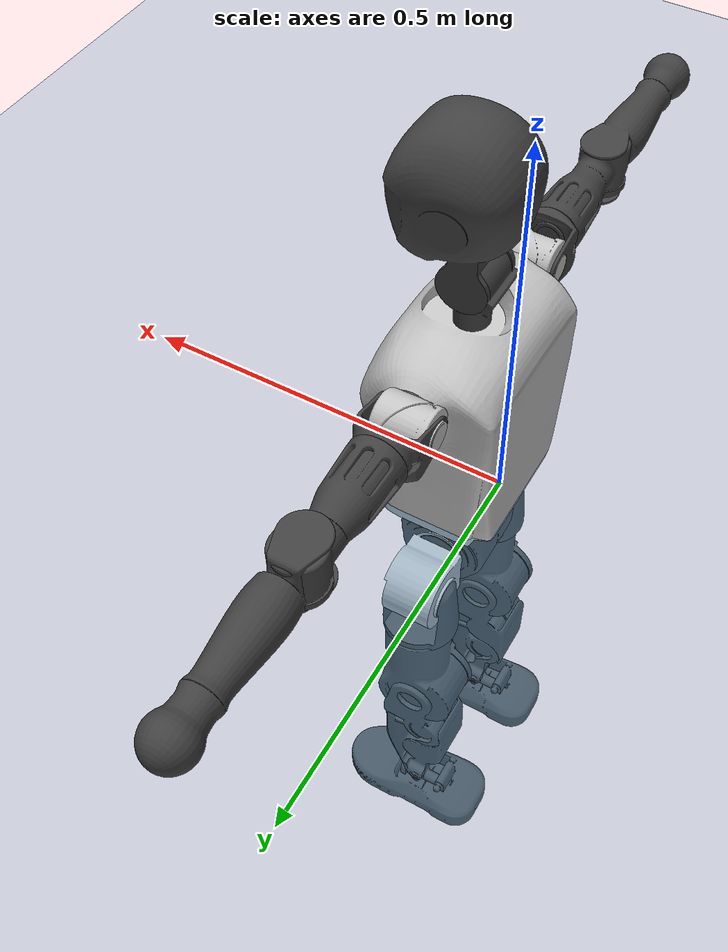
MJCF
<mujoco model="T1">
  <compiler angle="radian" assetdir="assets" balanceinertia="true" inertiafromgeom="false"/>

  <option timestep="0.005" density="1.2" viscosity="2e-05"/>

  <size nkey="1"/>

  <visual>
    <quality shadowsize="8192"/>
    <map shadowclip="0.5"/>
  </visual>

  <default>
    <default class="/">
      <joint armature="0.01" damping="0.01" frictionloss="0.1"/>
      <geom contype="0" conaffinity="0" group="1" solref="-1000 -80"/>
      <site size="0.01 0.005 0.005" group="5"/>
      <general forcelimited="true" biastype="affine" gainprm="25" biasprm="0 -25 -0.6"/>
      <default class="t1">
        <geom rgba="0.25 0.25 0.25 1"/>
        <default class="visual">
          <geom type="mesh" group="2"/>
        </default>
        <default class="collision">
          <geom group="3"/>
        </default>
        <default class="foot">
          <geom size="0.1115 0.05 0.015" type="box" condim="6" group="4" priority="1" solimp="0.015 1 0.015"/>
        </default>
        <default class="reward_collision_sphere">
          <geom group="5" rgba="1 0 0 1"/>
        </default>
      </default>
    </default>
  </default>

  <asset>
    <texture type="skybox" colorspace="auto" name="//unnamed_texture_0" builtin="gradient" rgb1="0.95 0.95 0.95" rgb2="0.95 0.95 0.95" width="100" height="600"/>
    <texture type="2d" colorspace="auto" name="texplane" builtin="checker" rgb1="0.345 0.575 0.748" rgb2="0.345 0.575 0.748" markrgb="1 1 1" width="512" height="512"/>
    <material name="MatPlane" class="/" texture="texplane" texuniform="true" texrepeat="2 2" specular="0.9"/>
    <mesh name="Trunk" class="/" file="Trunk.stl"/>
    <mesh name="H1" class="/" file="H1.stl"/>
    <mesh name="H2" class="/" file="H2.stl"/>
    <mesh name="AL1" class="/" file="AL1.stl"/>
    <mesh name="AL2" class="/" file="AL2.stl"/>
    <mesh name="AL3" class="/" file="AL3.stl"/>
    <mesh name="left_hand_link" class="/" file="left_hand_link.stl"/>
    <mesh name="AR1" class="/" file="AR1.stl"/>
    <mesh name="AR2" class="/" file="AR2.stl"/>
    <mesh name="AR3" class="/" file="AR3.stl"/>
    <mesh name="right_hand_link" class="/" file="right_hand_link.stl"/>
    <mesh name="Waist" class="/" file="Waist.stl"/>
    <mesh name="Hip_Pitch_Left" class="/" file="Hip_Pitch_Left.stl"/>
    <mesh name="Hip_Roll_Left" class="/" file="Hip_Roll_Left.stl"/>
    <mesh name="Hip_Yaw_Left" class="/" file="Hip_Yaw_Left.stl"/>
    <mesh name="Shank_Left" class="/" file="Shank_Left.stl"/>
    <mesh name="Ankle_Cross_Left" class="/" file="Ankle_Cross_Left.stl"/>
    <mesh name="left_foot_link" class="/" file="left_foot_link.stl"/>
    <mesh name="Hip_Pitch_Right" class="/" file="Hip_Pitch_Right.stl"/>
    <mesh name="Hip_Roll_Right" class="/" file="Hip_Roll_Right.stl"/>
    <mesh name="Hip_Yaw_Right" class="/" file="Hip_Yaw_Right.stl"/>
    <mesh name="Shank_Right" class="/" file="Shank_Right.stl"/>
    <mesh name="Ankle_Cross_Right" class="/" file="Ankle_Cross_Right.stl"/>
    <mesh name="right_foot_link" class="/" file="right_foot_link.stl"/>
  </asset>

  <worldbody>
    <geom name="floor" class="/" size="100 100 0.125" type="plane" group="0" material="MatPlane"/>
    <light name="toplight_shadow" class="/" pos="0 0 5" dir="0.0990148 0.0990148 -0.990148" type="directional" ambient="0.04 0.04 0.04" diffuse="0.55 0.55 0.55" specular="0.12 0.12 0.12"/>
    <light name="toplight_fill" class="/" pos="0 0 5" dir="0.0990148 0.0990148 -0.990148" type="directional" castshadow="false" ambient="0.04 0.04 0.04" diffuse="0.3 0.3 0.3" specular="0.08 0.08 0.08"/>
    <body name="trunk" childclass="t1" pos="-0.000868315 -0.000120904 -0.000116938" quat="1 -0.00011419 -0.000161706 -0.000124554">
      <inertial pos="0.0477376 -0.000547184 0.110658" quat="0.99996 -6.33353e-06 -0.008974 -2.47278e-06" mass="9.79984" diaginertia="0.0460544 0.0506104 0.0699899"/>
      <joint name="//unnamed_joint_0" type="free" armature="0" damping="0" frictionloss="0"/>
      <geom name="//unnamed_geom_1" class="visual" rgba="0.76 0.76 0.76 1" mesh="Trunk"/>
      <geom name="//unnamed_geom_2" class="collision" size="0.0709492 0.0945989 0.141898" pos="0.0523397 0 0.125499" type="box"/>
      <geom name="//unnamed_geom_3" class="reward_collision_sphere" size="0.108789" pos="0.0523397 0 0.104583"/>
      <geom name="//unnamed_geom_4" class="reward_collision_sphere" size="0.0141898" pos="0.0523397 0.0781841 0"/>
      <geom name="//unnamed_geom_5" class="reward_collision_sphere" size="0.0141898" pos="0.0523397 -0.0781841 0"/>
      <geom name="//unnamed_geom_6" class="reward_collision_sphere" size="0.0141898" pos="0.0523397 0.0984199 0.188249"/>
      <geom name="//unnamed_geom_7" class="reward_collision_sphere" size="0.0141898" pos="0.0523397 -0.0984199 0.188249"/>
      <site name="imu" pos="-0.00129291 0.00234652 -0.00376836" size="0.00945989"/>
      <camera name="track" pos="0 -1.83962 0" quat="0.707107 0.707107 0 0" mode="trackcom"/>
      <camera name="ego_camera" pos="0.106424 0 0.439247" quat="-0.5 -0.5 0.5 0.5"/>
      <body name="H1" pos="0.0530148 -0.000725789 0.253071" quat="1 4.88316e-05 -0.00010579 2.02816e-05">
        <inertial pos="-0.000368808 -0.00154713 0.0607296" quat="0.76292 -0.0136313 0.00231648 0.646345" mass="0.372933" diaginertia="0.000121584 0.000146002 0.000186983"/>
        <joint name="AAHead_yaw" pos="0 0 0" axis="-0.000388491 -0.00039805 1" range="-1.56547 1.57041" armature="0.00940094" damping="0.00980729" frictionloss="0.0906801"/>
        <geom name="//unnamed_geom_8" class="visual" mesh="H1"/>
        <body name="H2" pos="-1.91074e-05 -0.0002366 0.064453" quat="1 -6.39543e-05 0.000239848 -0.000171171">
          <inertial pos="0.00591353 4.34907e-05 0.103051" quat="0.988341 0.105569 -0.076924 -0.0782245" mass="0.529116" diaginertia="0.00102893 0.00126603 0.00212922"/>
          <joint name="Head_pitch" pos="0 0 0" axis="0.00025304 -1 0.000486236" range="-1.21451 0.354414" armature="0.00906843" damping="0.00536551" frictionloss="0.0948508"/>
          <geom name="//unnamed_geom_9" class="visual" mesh="H2"/>
          <geom name="//unnamed_geom_10" class="collision" size="0.0756791" pos="0.00872328 0 0.115041"/>
          <geom name="//unnamed_geom_11" class="reward_collision_sphere" size="0.085139" pos="0.0174466 0 0.104583"/>
        </body>
      </body>
      <body name="AL1" pos="0.0502061 0.0990341 0.228197" quat="1 -1.35033e-05 0.000441092 8.24585e-06">
        <inertial pos="-0.00129607 0.0413321 0.000534196" quat="0.505601 0.495032 -0.504665 0.494595" mass="0.440139" diaginertia="0.00067595 0.000833843 0.000362487"/>
        <joint name="Left_Shoulder_Pitch" pos="0 0 0" axis="0.00281569 0.999982 -0.00523457" range="-3.32057 1.218" armature="0.00904102" damping="0.00953347" frictionloss="0.0985125"/>
        <geom name="//unnamed_geom_12" class="visual" rgba="0.76 0.76 0.76 1" mesh="AL1"/>
        <body name="AL2" pos="0.00160205 0.0438898 -0.000941052" quat="1 2.23618e-05 -0.000113558 -7.29602e-05">
          <inertial pos="0.0032917 0.0344264 -0.00110264" quat="0.488064 0.511602 -0.487943 0.511829" mass="0.136751" diaginertia="0.000201407 0.000229659 0.000223812"/>
          <joint name="Left_Shoulder_Roll" pos="0 0 0" axis="-1 -3.57337e-05 -1.21499e-05" stiffness="0.00133847" range="-1.58925 1.74422" armature="0.00950088" damping="0.00827929" frictionloss="0.0943322"/>
          <geom name="//unnamed_geom_13" class="visual" mesh="AL2"/>
          <body name="AL3" pos="0.00123698 0.0559755 -3.8699e-05" quat="1 0.000110255 0.000251695 0.000305917">
            <inertial pos="-0.000282009 0.0789822 -0.000865496" quat="0.708079 0.706132 0.000633499 -0.00127682" mass="0.862413" diaginertia="0.00648802 0.00846814 0.000779528"/>
            <joint name="Left_Elbow_Pitch" pos="0 0 0" axis="-0.00104119 -0.999999 0.00104321" stiffness="0.00183887" range="-2.27033 2.26073" armature="0.00963353" damping="0.013823" frictionloss="0.0945138"/>
            <geom name="//unnamed_geom_14" class="visual" mesh="AL3"/>
            <geom name="//unnamed_geom_15" class="collision" size="0.0283797 0.0709492" pos="0 0.0459906 0" quat="0.707105 0.707108 0 0" type="cylinder"/>
            <geom name="//unnamed_geom_16" class="reward_collision_sphere" size="0.0340556"/>
            <body name="left_hand_link" pos="-0.000141128 0.13547 0.000748258" quat="1 -0.000201019 0.000195039 -9.57522e-05">
              <inertial pos="0.000744974 0.101253 5.73714e-05" quat="0.70807 0.706142 -0.000176642 0.000577519" mass="0.279774" diaginertia="0.00413222 0.0053457 0.000268628"/>
              <joint name="Left_Elbow_Yaw" pos="0 0 0" axis="0.00583108 0.00370045 0.999976" range="-2.46233 0.0207295" armature="0.00914779" damping="0.00703489" frictionloss="0.0917983"/>
              <geom name="//unnamed_geom_17" class="visual" mesh="left_hand_link"/>
              <geom name="//unnamed_geom_18" class="collision" size="0.0283797 0.082774" pos="0 0.119576 0" quat="0.707105 0.707108 0 0" type="cylinder"/>
              <geom name="//unnamed_geom_19" class="reward_collision_sphere" size="0.0472995"/>
              <geom name="//unnamed_geom_20" class="reward_collision_sphere" size="0.0331096" pos="0 0.101179 0"/>
              <geom name="//unnamed_geom_21" class="reward_collision_sphere" size="0.0331096" pos="0 0.19776 0"/>
            </body>
          </body>
        </body>
      </body>
      <body name="AR1" pos="0.0493391 -0.0967306 0.228727" quat="1 -0.000267405 0.000309783 0.000239872">
        <inertial pos="-0.00171106 -0.0413489 -5.51748e-05" quat="0.504256 0.495723 -0.504197 0.495751" mass="0.450389" diaginertia="0.000692362 0.000852802 0.000367979"/>
        <joint name="Right_Shoulder_Pitch" pos="0 0 0" axis="0.00212138 -0.999997 0.000948713" range="-1.2325 3.31178" armature="0.00908116" damping="0.0043197" frictionloss="0.0986483"/>
        <geom name="//unnamed_geom_22" class="visual" rgba="0.76 0.76 0.76 1" mesh="AR1"/>
        <body name="AR2" pos="-0.00111663 -0.0434738 0.000106544" quat="1 9.0481e-06 2.94442e-05 -6.94942e-06">
          <inertial pos="0.00411249 -0.0355503 0.000169883" quat="0.51236 0.487903 -0.511563 0.487588" mass="0.134292" diaginertia="0.000200415 0.000223757 0.000217447"/>
          <joint name="Right_Shoulder_Roll" pos="0 0 0" axis="-0.999998 -0.000100498 0.00196938" range="-1.72719 1.56625" armature="0.00920473" damping="0.00878631" frictionloss="0.0958261"/>
          <geom name="//unnamed_geom_23" class="visual" mesh="AR2"/>
          <body name="AR3" pos="-0.000880641 -0.0567822 -0.00045619" quat="1 -0.000100917 1.00936e-05 -7.09744e-05">
            <inertial pos="-0.000600324 -0.0786815 2.5186e-05" quat="0.709568 0.70463 -0.000221188 0.00314113" mass="0.861756" diaginertia="0.00645281 0.00841672 0.00077895"/>
            <joint name="Right_Elbow_Pitch" pos="0 0 0" axis="-0.00283549 0.99999 -0.00345609" range="-2.27098 2.28636" armature="0.00945887" damping="0.00761851" frictionloss="0.0936751"/>
            <geom name="//unnamed_geom_24" class="visual" mesh="AR3"/>
            <geom name="//unnamed_geom_25" class="collision" size="0.0283797 0.0709492" pos="0 -0.0459906 0" quat="0.707105 0.707108 0 0" type="cylinder"/>
            <geom name="//unnamed_geom_26" class="reward_collision_sphere" size="0.0340556"/>
            <body name="right_hand_link" pos="-0.00102038 -0.136054 -7.91698e-05" quat="1 4.66281e-05 4.11102e-05 2.81863e-05">
              <inertial pos="-0.000845619 -0.101172 0.00077036" quat="0.706274 0.707938 0.00040838 -0.000120983" mass="0.275505" diaginertia="0.00413249 0.00534348 0.000269991"/>
              <joint name="Right_Elbow_Yaw" pos="0 0 0" axis="0.000654303 -0.00139085 0.999999" range="-0.0188805 2.43741" armature="0.00943153" damping="0.0126334" frictionloss="0.0946937"/>
              <geom name="//unnamed_geom_27" class="visual" mesh="right_hand_link"/>
              <geom name="//unnamed_geom_28" class="collision" size="0.0283797 0.082774" pos="0 -0.119576 0" quat="0.707105 0.707108 0 0" type="cylinder"/>
              <geom name="//unnamed_geom_29" class="reward_collision_sphere" size="0.0472995"/>
              <geom name="//unnamed_geom_30" class="reward_collision_sphere" size="0.0331096" pos="0 -0.101179 0"/>
              <geom name="//unnamed_geom_31" class="reward_collision_sphere" size="0.0331096" pos="0 -0.19776 0"/>
            </body>
          </body>
        </body>
      </body>
      <body name="Waist" pos="0.0548823 -0.000666775 -0.120344" quat="1 -4.15675e-07 -5.50418e-05 -0.000215013">
        <inertial pos="0.00212387 -0.000591168 0.00789454" quat="0.983654 0.00104914 -0.179933 0.00689095" mass="2.20998" diaginertia="0.00274035 0.00351454 0.0060005"/>
        <joint name="Waist" pos="0 0 0" axis="-0.00175951 -0.00240893 0.999996" range="-1.55425 1.58837" armature="0.0095072" damping="0.0143272" frictionloss="0.0948338"/>
        <geom name="//unnamed_geom_32" class="visual" mesh="Waist"/>
        <body name="Hip_Pitch_Left" pos="0.000326237 0.0979431 0.000104916" quat="1 9.29932e-05 7.60346e-05 -3.96643e-05">
          <inertial pos="0.000627765 -0.00645653 -0.0191003" quat="0.974629 0.223131 0.0174854 0.00228718" mass="0.865835" diaginertia="0.000925292 0.000957345 0.00157574"/>
          <joint name="Left_Hip_Pitch" pos="0 0 0" axis="0.000233569 1 0.000918333" range="-1.79907 1.57318" armature="0.00911043" damping="0.00840607" frictionloss="0.0949534"/>
          <geom name="//unnamed_geom_33" class="visual" rgba="0.76 0.76 0.76 1" mesh="Hip_Pitch_Left"/>
          <body name="Hip_Roll_Left" pos="0.000432274 0.000191139 -0.0209619" quat="1 -0.000149694 0.000153398 -0.000163222">
            <inertial pos="0.000108334 -0.000438862 -0.0561244" quat="0.707535 -0.00680279 -0.00607777 0.70662" mass="0.326218" diaginertia="0.000867876 0.000993109 0.00064352"/>
            <joint name="Left_Hip_Roll" pos="0 0 0" axis="-0.999999 0.00106156 4.70833e-05" range="-1.56347 0.200525" armature="0.00984709" damping="0.0127908" frictionloss="0.0963552"/>
            <geom name="//unnamed_geom_34" class="visual" mesh="Hip_Roll_Left"/>
            <geom name="//unnamed_geom_35" class="reward_collision_sphere" size="0.0520294"/>
            <body name="Hip_Yaw_Left" pos="-5.36171e-06 0.000732457 -0.0867069" quat="1 1.03375e-05 -2.79495e-05 -1.40718e-05">
              <inertial pos="-0.00615978 -0.000676325 -0.0934719" quat="0.69579 -0.0327617 -0.0311275 0.716822" mass="1.82852" diaginertia="0.0129675 0.0165442 0.0032147"/>
              <joint name="Left_Hip_Yaw" pos="0 0 0" axis="0.000737347 0.000580946 -1" range="-0.996299 1.00181" armature="0.00941288" damping="0.00808421" frictionloss="0.0923222"/>
              <geom name="//unnamed_geom_36" class="visual" mesh="Hip_Yaw_Left"/>
              <geom name="//unnamed_geom_37" class="collision" size="0.0472995 0.0756791" type="cylinder"/>
              <body name="Shank_Left" pos="-0.0108803 -0.000268303 -0.139997" quat="1 -5.67937e-05 -8.15568e-05 3.10115e-05">
                <inertial pos="-0.00566611 0.00052182 -0.129972" quat="0.997703 0.0032621 -0.0238584 0.0633111" mass="1.47889" diaginertia="0.0175113 0.0229497 0.00229776"/>
                <joint name="Left_Knee_Pitch" pos="0 0 0" axis="0.00510296 0.999981 -0.00349112" stiffness="5.50986e-05" range="0.00211157 2.32575" armature="0.00983554" damping="0.0114223" frictionloss="0.0960859"/>
                <geom name="//unnamed_geom_38" class="visual" mesh="Shank_Left"/>
                <geom name="//unnamed_geom_39" class="collision" size="0.0472995 0.0709492" pos="0 0 -0.125499" type="cylinder"/>
                <geom name="//unnamed_geom_40" class="reward_collision_sphere" size="0.0614893"/>
                <body name="Ankle_Cross_Left" pos="-0.00101453 -4.89495e-05 -0.292934" quat="1 -5.95276e-05 -4.68102e-06 7.25168e-05">
                  <inertial pos="-0.00299853 0.00051812 -0.00834483" quat="0.443103 0.551032 0.55101 0.443183" mass="0.0611509" diaginertia="1.43826e-05 1.6695e-05 1.41287e-05"/>
                  <joint name="Left_Ankle_Pitch" pos="0 0 0" axis="-0.000325549 0.99999 -0.00447237" stiffness="0.00069286" range="-0.873243 0.365741" armature="0.00970393" damping="0.0090974" frictionloss="0.0974224"/>
                  <geom name="//unnamed_geom_41" class="visual" mesh="Ankle_Cross_Left"/>
                  <body name="left_foot_link" pos="0.000165159 -0.000212621 -0.0119535" quat="1 -0.000118584 7.0718e-05 -9.06915e-06">
                    <inertial pos="-0.000438767 -0.000601858 -0.00943213" quat="-0.000866823 0.620074 0.000795519 0.784543" mass="0.576431" diaginertia="0.00136594 0.00157842 0.00274812"/>
                    <joint name="Left_Ankle_Roll" pos="0 0 0" axis="-0.999998 6.99181e-05 0.0018628" range="-0.459181 0.453832" armature="0.00946175" damping="0.00430499" frictionloss="0.0930156"/>
                    <geom name="//unnamed_geom_42" class="visual" mesh="left_foot_link"/>
                    <geom name="left_foot" class="foot" size="0.103184 0.046893 0.0147401" pos="0.00872328 0 -0.0156874"/>
                    <geom name="//unnamed_geom_44" class="reward_collision_sphere" size="0.0491914" pos="0.00872328 0 -0.0156874"/>
                    <geom name="//unnamed_geom_45" class="reward_collision_sphere" size="0.0283797" pos="0.0828711 -0.0211557 -0.0156874"/>
                    <geom name="//unnamed_geom_46" class="reward_collision_sphere" size="0.0283797" pos="-0.0610629 -0.0211557 -0.0156874"/>
                    <site name="left_foot" class="foot" pos="0.00872328 0 -0.0156874" size="0.00945989"/>
                  </body>
                </body>
              </body>
            </body>
          </body>
        </body>
        <body name="Hip_Pitch_Right" pos="-7.64435e-05 -0.0976263 0.000900933" quat="1 -0.000102623 -0.000132273 -0.000439798">
          <inertial pos="0.000117652 0.00711954 -0.0183414" quat="0.973392 -0.228675 0.0139368 -0.00468183" mass="0.865912" diaginertia="0.000907863 0.000964636 0.00155087"/>
          <joint name="Right_Hip_Pitch" pos="0 0 0" axis="0.00301666 -0.999995 -0.000314611" range="-1.58994 1.80635" armature="0.00932568" damping="0.00585569" frictionloss="0.0938208"/>
          <geom name="//unnamed_geom_47" class="visual" rgba="0.76 0.76 0.76 1" mesh="Hip_Pitch_Right"/>
          <body name="Hip_Roll_Right" pos="0.000540475 -6.07959e-05 -0.020683" quat="1 -1.67136e-05 8.20255e-06 8.85092e-06">
            <inertial pos="0.00105386 0.000538256 -0.0566637" quat="0.707421 -0.00582384 -0.0053167 0.706748" mass="0.328365" diaginertia="0.000888189 0.00101077 0.000648548"/>
            <joint name="Right_Hip_Roll" pos="0 0 0" axis="-0.999981 -0.00118002 0.00613204" stiffness="0.0027115" range="-0.201733 1.56224" armature="0.00990872" damping="0.00679053" frictionloss="0.096897"/>
            <geom name="//unnamed_geom_48" class="visual" mesh="Hip_Roll_Right"/>
            <geom name="//unnamed_geom_49" class="reward_collision_sphere" size="0.0520294"/>
            <body name="Hip_Yaw_Right" pos="0.000335984 -0.000366753 -0.0855571" quat="1 -9.6006e-05 -9.71017e-05 2.87828e-05">
              <inertial pos="-0.00676314 -0.00030775 -0.0925362" quat="0.713194 -0.0326515 -0.0369025 0.699233" mass="1.83469" diaginertia="0.012951 0.0167866 0.00325358"/>
              <joint name="Right_Hip_Yaw" pos="0 0 0" axis="0.00231813 0.00305602 -0.999993" range="-1.0036 1.01177" armature="0.00918609" damping="0.00711865" frictionloss="0.0948789"/>
              <geom name="//unnamed_geom_50" class="visual" mesh="Hip_Yaw_Right"/>
              <geom name="//unnamed_geom_51" class="collision" size="0.0472995 0.0756791" type="cylinder"/>
              <body name="Shank_Right" pos="-0.0129073 -0.00106064 -0.141148" quat="1 0.000115819 4.91732e-05 -3.04043e-05">
                <inertial pos="-0.00602505 0.000897901 -0.127454" quat="0.99926 -0.00323841 -0.0237482 -0.0300825" mass="1.51419" diaginertia="0.0179507 0.0233565 0.00249305"/>
                <joint name="Right_Knee_Pitch" pos="0 0 0" axis="0.000872392 -0.999996 -0.00279138" range="-2.32423 -0.00476276" armature="0.00945904" damping="0.00856824" frictionloss="0.0974565"/>
                <geom name="//unnamed_geom_52" class="visual" mesh="Shank_Right"/>
                <geom name="//unnamed_geom_53" class="collision" size="0.0472995 0.0709492" pos="0 0 -0.125499" type="cylinder"/>
                <geom name="//unnamed_geom_54" class="reward_collision_sphere" size="0.0614893"/>
                <body name="Ankle_Cross_Right" pos="0.000486204 -0.000197783 -0.293173" quat="1 -4.28031e-05 -3.80109e-07 2.63478e-06">
                  <inertial pos="-0.00341866 0.000829225 -0.00805692" quat="0.444077 0.550015 0.551593 0.442746" mass="0.0622093" diaginertia="1.47082e-05 1.67984e-05 1.4252e-05"/>
                  <joint name="Right_Ankle_Pitch" pos="0 0 0" axis="-0.00128464 -0.999992 -0.00366554" stiffness="0.000350903" range="-0.365531 0.868253" armature="0.00909117" damping="0.00421974" frictionloss="0.0951961"/>
                  <geom name="//unnamed_geom_55" class="visual" mesh="Ankle_Cross_Right"/>
                  <body name="right_foot_link" pos="-0.000601224 -0.000788736 -0.0126973" quat="1 8.27697e-06 3.45158e-06 4.02886e-05">
                    <inertial pos="-0.000435884 -0.000276668 -0.0096696" quat="-0.00277602 0.620342 0.00337924 0.784319" mass="0.576834" diaginertia="0.00135889 0.00157173 0.00274789"/>
                    <joint name="Right_Ankle_Roll" pos="0 0 0" axis="-1 0.000352614 0.00051949" range="-0.435729 0.456631" armature="0.00926099" damping="0.00426024" frictionloss="0.098667"/>
                    <geom name="//unnamed_geom_56" class="visual" mesh="right_foot_link"/>
                    <geom name="right_foot" class="foot" size="0.0974411 0.0448126 0.0141006" pos="0.00872328 0 -0.0156874"/>
                    <geom name="//unnamed_geom_58" class="reward_collision_sphere" size="0.0378396"/>
                    <geom name="//unnamed_geom_59" class="reward_collision_sphere" size="0.0283797" pos="0.00872328 0 -0.0156874"/>
                    <geom name="//unnamed_geom_60" class="reward_collision_sphere" size="0.0283797" pos="0.0828711 0.0211557 -0.0156874"/>
                    <geom name="//unnamed_geom_61" class="reward_collision_sphere" size="0.0283797" pos="-0.0610629 0.0211557 -0.0156874"/>
                    <site name="right_foot" class="foot" pos="0.00872328 0 -0.0156874" size="0.00945989"/>
                  </body>
                </body>
              </body>
            </body>
          </body>
        </body>
      </body>
    </body>
  </worldbody>

  <contact>
    <pair class="/" geom1="floor" geom2="left_foot" name="//unnamed_contact_0"/>
    <pair class="/" geom1="floor" geom2="right_foot" name="//unnamed_contact_1"/>
  </contact>

  <actuator>
    <general name="AAHead_yaw" class="/" joint="AAHead_yaw" forcerange="-6.42446 6.42446" gainprm="23.1237" biasprm="0 -23.1237 -0.564319"/>
    <general name="Head_pitch" class="/" joint="Head_pitch" forcerange="-6.74177 6.74177" gainprm="23.1237" biasprm="0 -23.1237 -0.564319"/>
    <general name="Left_Shoulder_Pitch" class="/" joint="Left_Shoulder_Pitch" forcerange="-16.8239 16.8239" gainprm="23.1237" biasprm="0 -23.1237 -0.564319"/>
    <general name="Left_Shoulder_Roll" class="/" joint="Left_Shoulder_Roll" forcerange="-17.1191 17.1191" gainprm="23.1237" biasprm="0 -23.1237 -0.564319"/>
    <general name="Left_Elbow_Pitch" class="/" joint="Left_Elbow_Pitch" forcerange="-16.6288 16.6288" gainprm="23.1237" biasprm="0 -23.1237 -0.564319"/>
    <general name="Left_Elbow_Yaw" class="/" joint="Left_Elbow_Yaw" forcerange="-16.5918 16.5918" gainprm="23.1237" biasprm="0 -23.1237 -0.564319"/>
    <general name="Right_Shoulder_Pitch" class="/" joint="Right_Shoulder_Pitch" forcerange="-17.4368 17.4368" gainprm="23.1237" biasprm="0 -23.1237 -0.564319"/>
    <general name="Right_Shoulder_Roll" class="/" joint="Right_Shoulder_Roll" forcerange="-16.7822 16.7822" gainprm="23.1237" biasprm="0 -23.1237 -0.564319"/>
    <general name="Right_Elbow_Pitch" class="/" joint="Right_Elbow_Pitch" forcerange="-17.0683 17.0683" gainprm="23.1237" biasprm="0 -23.1237 -0.564319"/>
    <general name="Right_Elbow_Yaw" class="/" joint="Right_Elbow_Yaw" forcerange="-17.2307 17.2307" gainprm="23.1237" biasprm="0 -23.1237 -0.564319"/>
    <general name="Waist" class="/" joint="Waist" forcerange="-28.1023 28.1023" gainprm="23.1237" biasprm="0 -23.1237 -0.564319"/>
    <general name="Left_Hip_Pitch" class="/" joint="Left_Hip_Pitch" forcerange="-42.5897 42.5897" gainprm="23.1237" biasprm="0 -23.1237 -0.564319"/>
    <general name="Left_Hip_Roll" class="/" joint="Left_Hip_Roll" forcerange="-28.8796 28.8796" gainprm="23.1237" biasprm="0 -23.1237 -0.564319"/>
    <general name="Left_Hip_Yaw" class="/" joint="Left_Hip_Yaw" forcerange="-29.1876 29.1876" gainprm="23.1237" biasprm="0 -23.1237 -0.564319"/>
    <general name="Left_Knee_Pitch" class="/" joint="Left_Knee_Pitch" forcerange="-55.2321 55.2321" gainprm="23.1237" biasprm="0 -23.1237 -0.564319"/>
    <general name="Left_Ankle_Pitch" class="/" joint="Left_Ankle_Pitch" forcerange="-19.4571 19.4571" gainprm="23.1237" biasprm="0 -23.1237 -0.564319"/>
    <general name="Left_Ankle_Roll" class="/" joint="Left_Ankle_Roll" forcerange="-14.339 14.339" gainprm="23.1237" biasprm="0 -23.1237 -0.564319"/>
    <general name="Right_Hip_Pitch" class="/" joint="Right_Hip_Pitch" forcerange="-43.0075 43.0075" gainprm="23.1237" biasprm="0 -23.1237 -0.564319"/>
    <general name="Right_Hip_Roll" class="/" joint="Right_Hip_Roll" forcerange="-27.9307 27.9307" gainprm="23.1237" biasprm="0 -23.1237 -0.564319"/>
    <general name="Right_Hip_Yaw" class="/" joint="Right_Hip_Yaw" forcerange="-28.4478 28.4478" gainprm="23.1237" biasprm="0 -23.1237 -0.564319"/>
    <general name="Right_Knee_Pitch" class="/" joint="Right_Knee_Pitch" forcerange="-57.9588 57.9588" gainprm="23.1237" biasprm="0 -23.1237 -0.564319"/>
    <general name="Right_Ankle_Pitch" class="/" joint="Right_Ankle_Pitch" forcerange="-19.0794 19.0794" gainprm="23.1237" biasprm="0 -23.1237 -0.564319"/>
    <general name="Right_Ankle_Roll" class="/" joint="Right_Ankle_Roll" forcerange="-14.2085 14.2085" gainprm="23.1237" biasprm="0 -23.1237 -0.564319"/>
  </actuator>

  <sensor>
    <gyro site="imu" name="imu_angular_velocity"/>
    <velocimeter site="imu" name="imu_linear_velocity"/>
    <framelinvel objtype="site" objname="left_foot" name="left_foot_global_linear_velocity"/>
    <framelinvel objtype="site" objname="right_foot" name="right_foot_global_linear_velocity"/>
  </sensor>

  <keyframe>
    <key name="home" qpos="0 0 0.6385 1 0 0 0 0 0 0 1.4 0 -0.4 0 -1.4 0 0.4 0 -0.4 0 0 0.8 -0.4 0 0.4 0 0 -0.8 0.4 0"/>
  </keyframe>
</mujoco>
